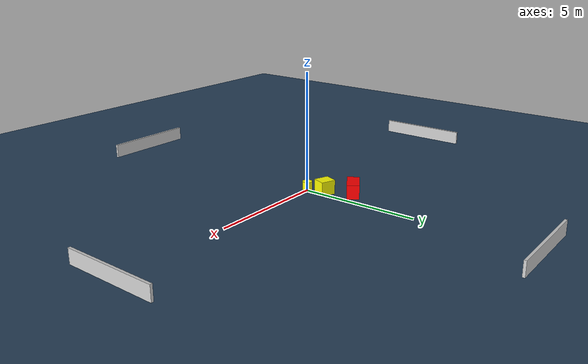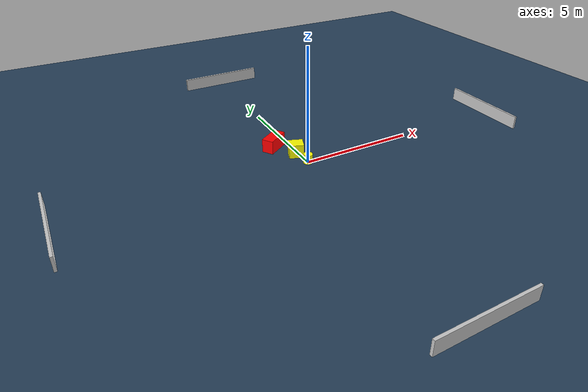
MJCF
<?xml version="1.0" ?>
<mujoco model="generated_environment">
  <option timestep="0.01" integrator="RK4" cone="elliptic"/>
  <default>
    <geom density="1"/>
  </default>
  <asset>
    <texture builtin="gradient" height="3072" name="skybox" rgb1="0.3 0.5 0.7" rgb2="0 0 0" type="skybox" width="512"/>
    <texture builtin="checker" height="300" name="groundplane" rgb1="0.2 0.3 0.4" rgb2="0.1 0.2 0.3" type="2d" width="300"/>
    <material name="groundplane" reflectance="0.2" texrepeat="5 5" texture="groundplane"/>
  </asset>
  <worldbody>
    <light dir="0 0 -1" directional="true" pos="0 0 1.5"/>
    <geom condim="3" friction="0.5 0.005 0.001" material="groundplane" name="floor" pos="0 0 0" size="0 0 0.05" type="plane"/>
    <body name="walls">
      <geom name="wall_1" condim="4" pos="-10.0 0.0 0.3" rgba="0.800000011920929 0.800000011920929 0.800000011920929 1.0" size="0.05 2.0 0.3" type="box"/>
      <geom name="wall_2" condim="4" pos="10.0 0.0 0.3" rgba="0.800000011920929 0.800000011920929 0.800000011920929 1.0" size="0.05 2.0 0.3" type="box"/>
      <geom name="wall_3" condim="4" pos="0.0 -10.0 0.3" rgba="0.800000011920929 0.800000011920929 0.800000011920929 1.0" size="2.0 0.05 0.3" type="box"/>
      <geom name="wall_4" condim="4" pos="0.0 10.0 0.3" rgba="0.800000011920929 0.800000011920929 0.800000011920929 1.0" size="2.0 0.05 0.3" type="box"/>
    </body>
    <body name="robot">
      <joint name="joint_x" type="slide" pos="0 0 0" axis="1 0 0"/>
      <joint name="joint_y" type="slide" pos="0 0 0" axis="0 1 0"/>
      <geom name="robot" type="cylinder" pos="0.0 0.0 0.2" size="0.2 0.2 0.0" mass="5.0" friction="1.0 0.005 0.0001" condim="4" rgba="1.0 1.0 0.0 1.0"/>
    </body>
    <body name="obstacle_1_movable">
      <geom name="obstacle_1_movable" condim="4" pos="-0.151412954895947 0.7884605288790705 0.3" euler="0 0 159.4929886363886" friction="0.0 0.005 0.001" rgba="1.0 1.0 0.0 1.0" size="0.3168378149756367 0.27735551817618204 0.3" type="box" mass="0.1"/>
      <joint type="free"/>
    </body>
    <body name="obstacle_2_static">
      <geom name="obstacle_2_static" condim="4" pos="-0.7047194280773753 1.8217151497246 0.3" euler="0 0 123.62156783037419" friction="0.0 0.005 0.001" rgba="1.0 0.0 0.0 1.0" size="0.2571700764357166 0.5240521655843466 0.3" type="box"/>
    </body>
  </worldbody>
  <actuator>
    <motor name="actuator_x" joint="joint_x" gear="1" ctrlrange="-1 1"/>
    <motor name="actuator_y" joint="joint_y" gear="1" ctrlrange="-1 1"/>
  </actuator>
</mujoco>
